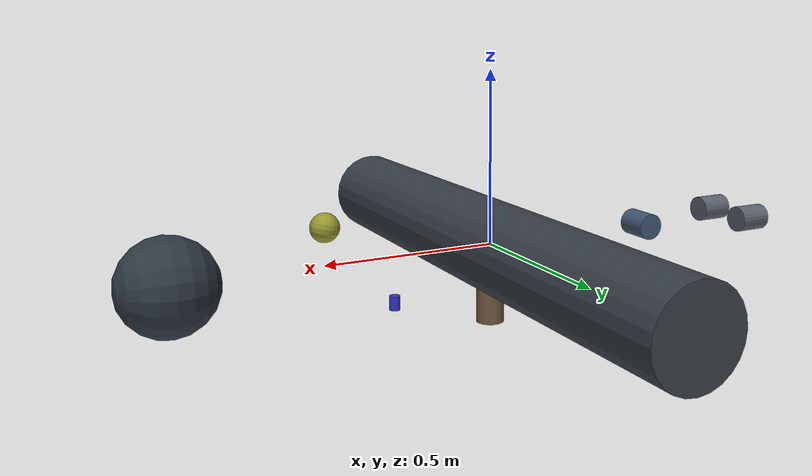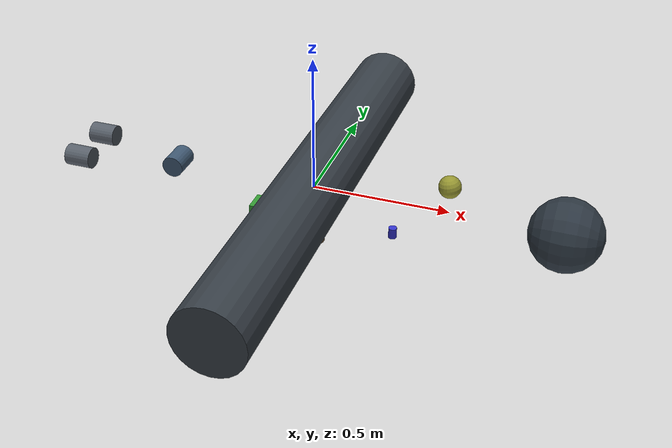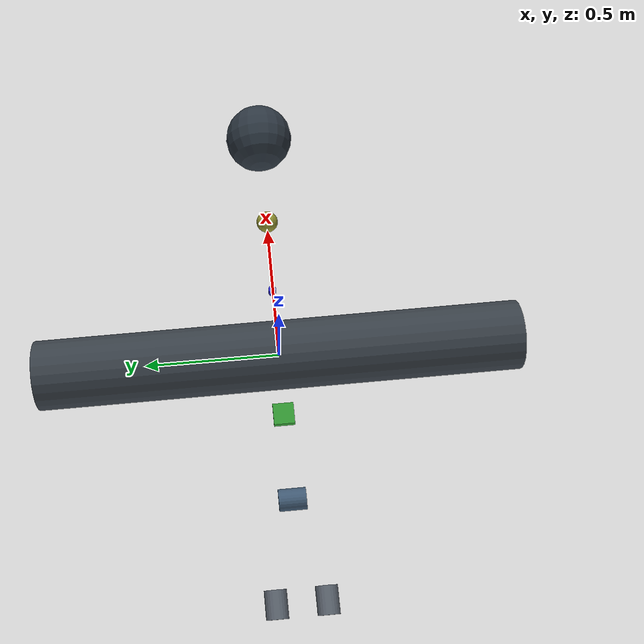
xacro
<?xml version="1.0"?>
<robot name="auv_surveillance" xmlns:xacro="http://www.ros.org/wiki/xacro">

  <xacro:property name="hull_length" value="1.80"/>
  <xacro:property name="hull_radius" value="0.13"/>
  <xacro:property name="mass_rigid"  value="35.0"/>

  <!-- BASE LINK — torpedo hull -->
  <link name="base_link">
    <inertial>
      <origin xyz="0 0 0" rpy="0 0 0"/>
      <mass value="35.0"/>
      <inertia ixx="2.52" ixy="0.0" ixz="0.0"
                           iyy="9.75" iyz="0.0"
                                      izz="9.75"/>
    </inertial>
    <visual name="hull">
      <origin xyz="0 0 0" rpy="1.5708 0 0"/>
      <geometry><cylinder radius="0.13" length="1.80"/></geometry>
      <material name="auv_grey"><color rgba="0.22 0.25 0.28 1.0"/></material>
    </visual>
    <visual name="nose">
      <origin xyz="0.90 0 0" rpy="0 1.5708 0"/>
      <geometry><sphere radius="0.13"/></geometry>
      <material name="nose_mat"><color rgba="0.18 0.22 0.26 1.0"/></material>
    </visual>
    <collision name="hull_col">
      <origin xyz="0 0 0" rpy="1.5708 0 0"/>
      <geometry><cylinder radius="0.13" length="1.80"/></geometry>
    </collision>
  </link>

  <!-- THRUSTER PORT SURGE -->
  <joint name="thruster_port_surge_joint" type="continuous">
    <parent link="base_link"/>
    <child link="thruster_port_surge"/>
    <origin xyz="-0.90 0.09 0" rpy="0 1.5708 0"/>
    <axis xyz="0 0 1"/>
  </joint>
  <link name="thruster_port_surge">
    <inertial>
      <mass value="0.5"/>
      <inertia ixx="0.0008" ixy="0.0" ixz="0.0"
                             iyy="0.0008" iyz="0.0"
                                          izz="0.0008"/>
    </inertial>
    <visual>
      <geometry><cylinder radius="0.04" length="0.10"/></geometry>
      <material name="thr_mat"><color rgba="0.35 0.38 0.42 1.0"/></material>
    </visual>
    <collision>
      <geometry><cylinder radius="0.04" length="0.10"/></geometry>
    </collision>
  </link>

  <!-- THRUSTER STARBOARD SURGE -->
  <joint name="thruster_stbd_surge_joint" type="continuous">
    <parent link="base_link"/>
    <child link="thruster_stbd_surge"/>
    <origin xyz="-0.90 -0.09 0" rpy="0 1.5708 0"/>
    <axis xyz="0 0 1"/>
  </joint>
  <link name="thruster_stbd_surge">
    <inertial>
      <mass value="0.5"/>
      <inertia ixx="0.0008" ixy="0.0" ixz="0.0"
                             iyy="0.0008" iyz="0.0"
                                          izz="0.0008"/>
    </inertial>
    <visual>
      <geometry><cylinder radius="0.04" length="0.10"/></geometry>
      <material name="thr_mat2"><color rgba="0.35 0.38 0.42 1.0"/></material>
    </visual>
    <collision>
      <geometry><cylinder radius="0.04" length="0.10"/></geometry>
    </collision>
  </link>

  <!-- THRUSTER HEAVE -->
  <joint name="thruster_heave_joint" type="continuous">
    <parent link="base_link"/>
    <child link="thruster_heave"/>
    <origin xyz="0.0 0 -0.18" rpy="0 0 0"/>
    <axis xyz="0 0 1"/>
  </joint>
  <link name="thruster_heave">
    <inertial>
      <mass value="0.5"/>
      <inertia ixx="0.0008" ixy="0.0" ixz="0.0"
                             iyy="0.0008" iyz="0.0"
                                          izz="0.0008"/>
    </inertial>
    <visual>
      <geometry><cylinder radius="0.04" length="0.10"/></geometry>
      <material name="heave_mat"><color rgba="0.45 0.35 0.25 1.0"/></material>
    </visual>
    <collision>
      <geometry><cylinder radius="0.04" length="0.10"/></geometry>
    </collision>
  </link>

  <!-- THRUSTER YAW -->
  <joint name="thruster_yaw_joint" type="continuous">
    <parent link="base_link"/>
    <child link="thruster_yaw"/>
    <origin xyz="-0.54 0 0" rpy="1.5708 0 0"/>
    <axis xyz="0 0 1"/>
  </joint>
  <link name="thruster_yaw">
    <inertial>
      <mass value="0.5"/>
      <inertia ixx="0.0008" ixy="0.0" ixz="0.0"
                             iyy="0.0008" iyz="0.0"
                                          izz="0.0008"/>
    </inertial>
    <visual>
      <geometry><cylinder radius="0.04" length="0.10"/></geometry>
      <material name="yaw_mat"><color rgba="0.25 0.35 0.45 1.0"/></material>
    </visual>
    <collision>
      <geometry><cylinder radius="0.04" length="0.10"/></geometry>
    </collision>
  </link>

  <!-- IMU LINK -->
  <joint name="imu_joint" type="fixed">
    <parent link="base_link"/>
    <child link="imu_link"/>
    <origin xyz="0 0 0" rpy="0 0 0"/>
  </joint>
  <link name="imu_link">
    <inertial>
      <mass value="0.01"/>
      <inertia ixx="1e-6" ixy="0.0" ixz="0.0"
                           iyy="1e-6" iyz="0.0"
                                      izz="1e-6"/>
    </inertial>
    <visual>
      <geometry><box size="0.02 0.02 0.01"/></geometry>
      <material name="imu_col"><color rgba="0.8 0.2 0.2 1.0"/></material>
    </visual>
  </link>

  <!-- DVL LINK -->
  <joint name="dvl_joint" type="fixed">
    <parent link="base_link"/>
    <child link="dvl_link"/>
    <origin xyz="-0.2 0 -0.13" rpy="0 3.14159 0"/>
  </joint>
  <link name="dvl_link">
    <inertial>
      <mass value="0.2"/>
      <inertia ixx="0.0001" ixy="0.0" ixz="0.0"
                             iyy="0.0001" iyz="0.0"
                                          izz="0.0001"/>
    </inertial>
    <visual>
      <geometry><box size="0.08 0.08 0.04"/></geometry>
      <material name="dvl_col"><color rgba="0.2 0.6 0.2 1.0"/></material>
    </visual>
    <collision>
      <geometry><box size="0.08 0.08 0.04"/></geometry>
    </collision>
  </link>

  <!-- DEPTH SENSOR LINK -->
  <joint name="depth_joint" type="fixed">
    <parent link="base_link"/>
    <child link="depth_sensor_link"/>
    <origin xyz="0.3 0 -0.13" rpy="0 0 0"/>
  </joint>
  <link name="depth_sensor_link">
    <inertial>
      <mass value="0.05"/>
      <inertia ixx="0.00001" ixy="0.0" ixz="0.0"
                              iyy="0.00001" iyz="0.0"
                                            izz="0.00001"/>
    </inertial>
    <visual>
      <geometry><cylinder radius="0.015" length="0.04"/></geometry>
      <material name="dep_col"><color rgba="0.2 0.2 0.8 1.0"/></material>
    </visual>
  </link>

  <!-- SONAR LINK -->
  <joint name="sonar_joint" type="fixed">
    <parent link="base_link"/>
    <child link="sonar_link"/>
    <origin xyz="0.495 0 0.104" rpy="0 -0.2 0"/>
  </joint>
  <link name="sonar_link">
    <inertial>
      <mass value="0.1"/>
      <inertia ixx="0.0001" ixy="0.0" ixz="0.0"
                             iyy="0.0001" iyz="0.0"
                                          izz="0.0001"/>
    </inertial>
    <visual>
      <geometry><sphere radius="0.04"/></geometry>
      <material name="sonar_col"><color rgba="0.6 0.6 0.2 1.0"/></material>
    </visual>
    <collision>
      <geometry><sphere radius="0.04"/></geometry>
    </collision>
  </link>

  <!--                     GAZEBO PLUGINS                            -->

  <!-- IMU Plugin -->
  <gazebo reference="imu_link">
    <sensor name="imu_sensor" type="imu">
      <always_on>true</always_on>
      <update_rate>50.0</update_rate>
      <visualize>false</visualize>
      <plugin name="imu_plugin" filename="libgazebo_ros_imu_sensor.so">
        <ros>
          <namespace>/auv</namespace>
          <remapping>~/out:=imu/data</remapping>
        </ros>
        <initial_orientation_as_reference>false</initial_orientation_as_reference>
        <frame_name>imu_link</frame_name>
        <update_rate>50.0</update_rate>
        <gaussian_noise>0.001</gaussian_noise>
      </plugin>
    </sensor>
  </gazebo>

  <!-- DVL Plugin — 4-beam ray sensor pointing down -->
  <gazebo reference="dvl_link">
    <sensor name="dvl_sensor" type="ray">
      <always_on>true</always_on>
      <update_rate>8.0</update_rate>
      <ray>
        <scan>
          <horizontal>
            <samples>4</samples>
            <resolution>1</resolution>
            <min_angle>-0.52</min_angle>
            <max_angle>0.52</max_angle>
          </horizontal>
          <vertical>
            <samples>1</samples>
            <resolution>1</resolution>
            <min_angle>0.0</min_angle>
            <max_angle>0.0</max_angle>
          </vertical>
        </scan>
        <range>
          <min>0.5</min>
          <max>200.0</max>
          <resolution>0.01</resolution>
        </range>
        <noise>
          <type>gaussian</type>
          <mean>0.0</mean>
          <stddev>0.02</stddev>
        </noise>
      </ray>
      <plugin name="dvl_plugin" filename="libgazebo_ros_ray_sensor.so">
        <ros>
          <namespace>/auv</namespace>
          <remapping>~/out:=dvl/ranges</remapping>
        </ros>
        <output_type>sensor_msgs/LaserScan</output_type>
        <frame_name>dvl_link</frame_name>
      </plugin>
    </sensor>
  </gazebo>

  <!-- Depth Sensor Plugin -->
  <gazebo reference="depth_sensor_link">
    <sensor name="depth_sensor" type="ray">
      <always_on>true</always_on>
      <update_rate>20.0</update_rate>
      <ray>
        <scan>
          <horizontal>
            <samples>1</samples>
            <resolution>1</resolution>
            <min_angle>0.0</min_angle>
            <max_angle>0.0</max_angle>
          </horizontal>
        </scan>
        <range>
          <min>0.1</min>
          <max>500.0</max>
          <resolution>0.001</resolution>
        </range>
        <noise>
          <type>gaussian</type>
          <mean>0.0</mean>
          <stddev>0.005</stddev>
        </noise>
      </ray>
      <plugin name="depth_plugin" filename="libgazebo_ros_ray_sensor.so">
        <ros>
          <namespace>/auv</namespace>
          <remapping>~/out:=depth/range</remapping>
        </ros>
        <output_type>sensor_msgs/Range</output_type>
        <frame_name>depth_sensor_link</frame_name>
      </plugin>
    </sensor>
  </gazebo>

  <!-- Forward-Looking Sonar — 120 degree azimuth, 30m max range -->
  <gazebo reference="sonar_link">
    <sensor name="sonar_fls" type="ray">
      <always_on>true</always_on>
      <update_rate>5.0</update_rate>
      <ray>
        <scan>
          <horizontal>
            <samples>120</samples>
            <resolution>1</resolution>
            <min_angle>-1.047</min_angle>
            <max_angle>1.047</max_angle>
          </horizontal>
          <vertical>
            <samples>5</samples>
            <resolution>1</resolution>
            <min_angle>-0.087</min_angle>
            <max_angle>0.087</max_angle>
          </vertical>
        </scan>
        <range>
          <min>0.5</min>
          <max>30.0</max>
          <resolution>0.05</resolution>
        </range>
        <noise>
          <type>gaussian</type>
          <mean>0.0</mean>
          <stddev>0.05</stddev>
        </noise>
      </ray>
      <plugin name="sonar_plugin" filename="libgazebo_ros_ray_sensor.so">
        <ros>
          <namespace>/auv</namespace>
          <remapping>~/out:=sonar/scan</remapping>
        </ros>
        <output_type>sensor_msgs/LaserScan</output_type>
        <frame_name>sonar_link</frame_name>
      </plugin>
    </sensor>
  </gazebo>

  <!-- Buoyancy: +4.9N net upthrust (surfaces on power loss) -->
  <gazebo reference="base_link">
    <buoyancy>
      <link_name>base_link</link_name>
      <volume>0.03463</volume>
      <center_of_volume>0 0 0.02</center_of_volume>
    </buoyancy>
  </gazebo>

  <!-- THRUSTER FORCE PLUGINS - correct ROS2 Humble syntax -->
  <gazebo>
    <plugin name="thruster_port_surge_plugin" filename="libgazebo_ros_force.so">
      <ros><remapping>~/cmd_force:=/auv/thruster/port_surge/cmd_force</remapping></ros>
      <link_name>thruster_port_surge</link_name>
      <force_frame>link</force_frame>
    </plugin>
  </gazebo>
  <gazebo>
    <plugin name="thruster_stbd_surge_plugin" filename="libgazebo_ros_force.so">
      <ros><remapping>~/cmd_force:=/auv/thruster/stbd_surge/cmd_force</remapping></ros>
      <link_name>thruster_stbd_surge</link_name>
      <force_frame>link</force_frame>
    </plugin>
  </gazebo>
  <gazebo>
    <plugin name="thruster_heave_plugin" filename="libgazebo_ros_force.so">
      <ros><remapping>~/cmd_force:=/auv/thruster/heave/cmd_force</remapping></ros>
      <link_name>thruster_heave</link_name>
      <force_frame>link</force_frame>
    </plugin>
  </gazebo>
  <gazebo>
    <plugin name="thruster_yaw_plugin" filename="libgazebo_ros_force.so">
      <ros><remapping>~/cmd_force:=/auv/thruster/yaw/cmd_force</remapping></ros>
      <link_name>thruster_yaw</link_name>
      <force_frame>link</force_frame>
    </plugin>
  </gazebo>
</robot>
